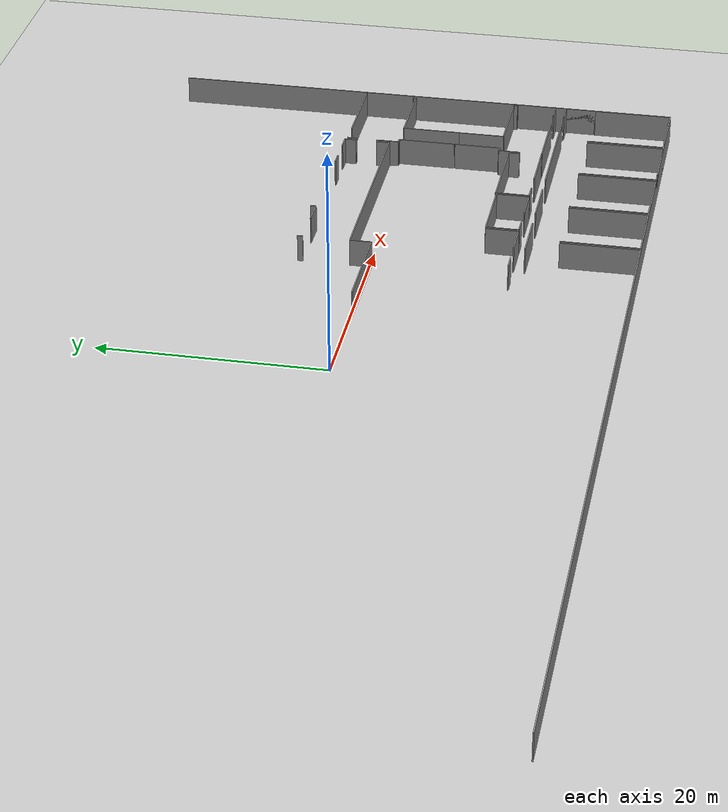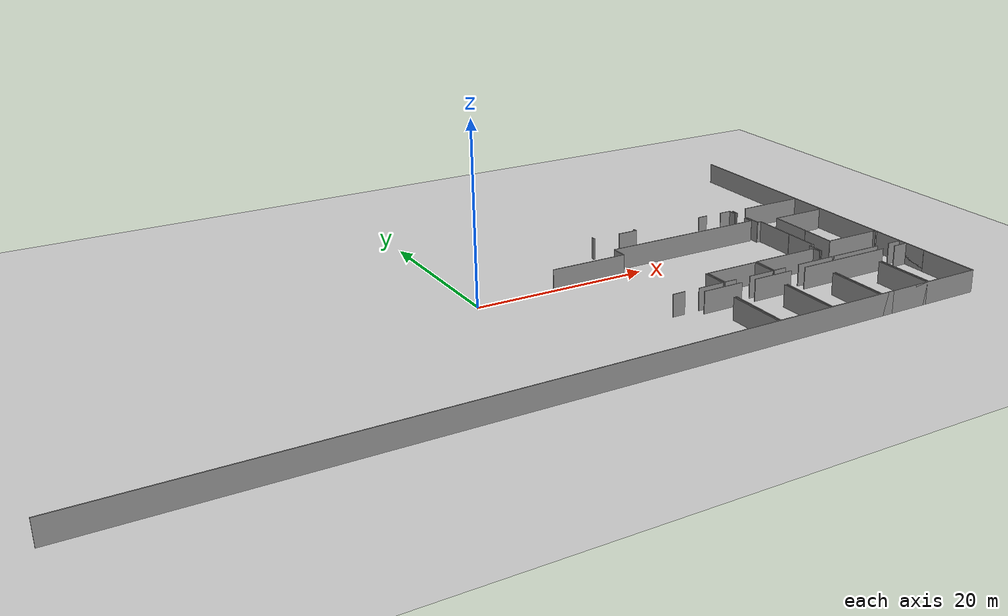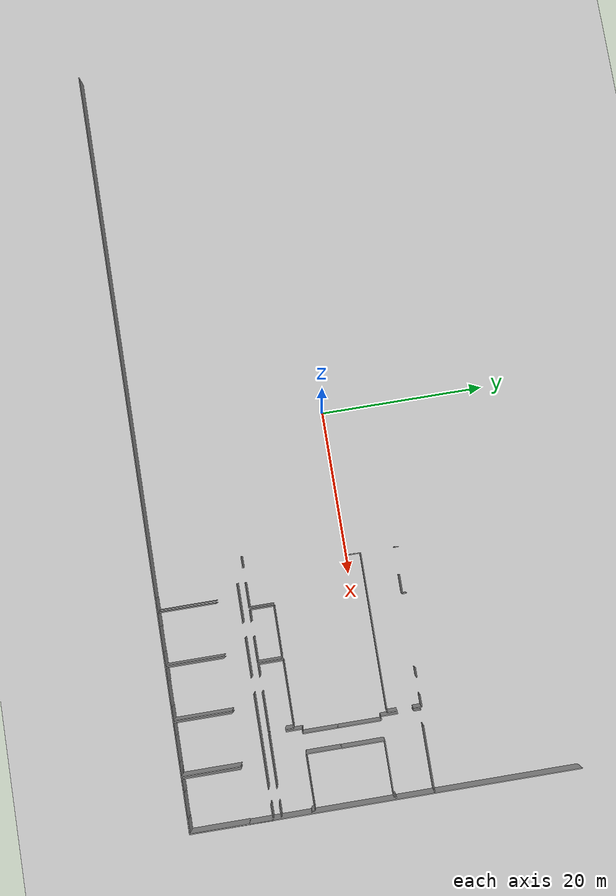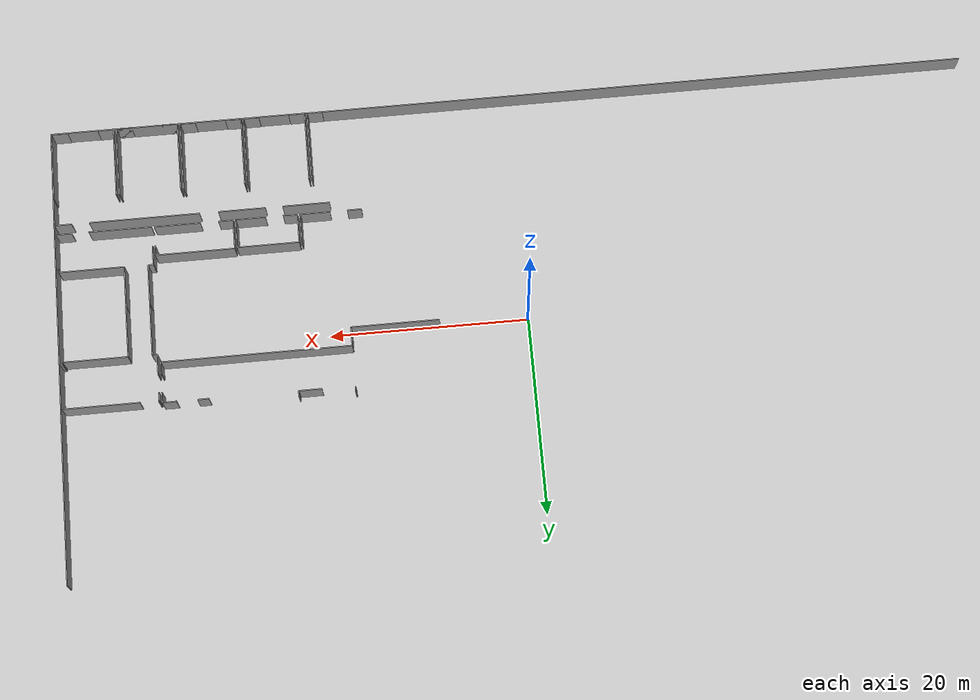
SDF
<sdf version="1.6">
 <world name="default">
  <model name="ground_plane">
   <static>1</static>
   <link name="link">
    <collision name="collision">
     <geometry><plane><normal>0 0 1</normal><size>100 100</size></plane></geometry>
     <surface><friction><ode><mu>100</mu><mu2>50</mu2></ode></friction></surface>
    </collision>
    <visual name="visual">
     <cast_shadows>0</cast_shadows>
     <geometry><plane><normal>0 0 1</normal><size>100 100</size></plane></geometry>
     <material>
      <script><uri>file://media/materials/scripts/gazebo.material</uri><name>Gazebo/Grey</name></script>
     </material>
    </visual>
   </link>
  </model>
  <model name="50045230">
   <static>1</static>
   <link name="Wall_241">
    <collision name="Wall_241_Collision">
     <geometry><box><size>4.75909962294 0.1 2.5</size></box></geometry>
     <pose>2.37954981147 0 1.25 0 0 0</pose>
    </collision>
    <visual name="Wall_241_Visual">
     <pose>2.37954981147 0 1.25 0 0 0</pose>
     <geometry><box><size>4.75909962294 0.1 2.5</size></box></geometry>
     <material>
      <script><uri>file://media/materials/scripts/gazebo.material</uri><name>Gazebo/Grey</name></script>
      <ambient>1 1 1 1</ambient>
     </material>
    </visual>
    <pose>65.7381898511 -36.8174489317 0 0 0 0.0</pose>
   </link>
   <link name="Wall_242">
    <collision name="Wall_242_Collision">
     <geometry><box><size>4.77281094875 0.1 2.5</size></box></geometry>
     <pose>2.38640547437 0 1.25 0 0 0</pose>
    </collision>
    <visual name="Wall_242_Visual">
     <pose>2.38640547437 0 1.25 0 0 0</pose>
     <geometry><box><size>4.77281094875 0.1 2.5</size></box></geometry>
     <material>
      <script><uri>file://media/materials/scripts/gazebo.material</uri><name>Gazebo/Grey</name></script>
      <ambient>1 1 1 1</ambient>
     </material>
    </visual>
    <pose>72.2357078472 -36.8174489317 0 0 0 0.0</pose>
   </link>
   <link name="Wall_243">
    <collision name="Wall_243_Collision">
     <geometry><box><size>11.1521322381 0.1 2.5</size></box></geometry>
     <pose>5.57606611906 0 1.25 0 0 0</pose>
    </collision>
    <visual name="Wall_243_Visual">
     <pose>5.57606611906 0 1.25 0 0 0</pose>
     <geometry><box><size>11.1521322381 0.1 2.5</size></box></geometry>
     <material>
      <script><uri>file://media/materials/scripts/gazebo.material</uri><name>Gazebo/Grey</name></script>
      <ambient>1 1 1 1</ambient>
     </material>
    </visual>
    <pose>78.8972539261 -36.8174489317 0 0 0 0.0</pose>
   </link>
   <link name="Wall_244">
    <collision name="Wall_244_Collision">
     <geometry><box><size>1.77599756243 0.1 2.5</size></box></geometry>
     <pose>0.887998781215 0 1.25 0 0 0</pose>
    </collision>
    <visual name="Wall_244_Visual">
     <pose>0.887998781215 0 1.25 0 0 0</pose>
     <geometry><box><size>1.77599756243 0.1 2.5</size></box></geometry>
     <material>
      <script><uri>file://media/materials/scripts/gazebo.material</uri><name>Gazebo/Grey</name></script>
      <ambient>1 1 1 1</ambient>
     </material>
    </visual>
    <pose>91.7968184646 -36.8174489317 0 0 0 0.0</pose>
   </link>
   <link name="Wall_245">
    <collision name="Wall_245_Collision">
     <geometry><box><size>2.72893470616 0.1 2.5</size></box></geometry>
     <pose>1.36446735308 0 1.25 0 0 0</pose>
    </collision>
    <visual name="Wall_245_Visual">
     <pose>1.36446735308 0 1.25 0 0 0</pose>
     <geometry><box><size>2.72893470616 0.1 2.5</size></box></geometry>
     <material>
      <script><uri>file://media/materials/scripts/gazebo.material</uri><name>Gazebo/Grey</name></script>
      <ambient>1 1 1 1</ambient>
     </material>
    </visual>
    <pose>93.572816027 -36.8174489317 0 0 0 -1.57079632679</pose>
   </link>
   <link name="Wall_267">
    <collision name="Wall_267_Collision">
     <geometry><box><size>1.54760242233 0.1 2.5</size></box></geometry>
     <pose>0.773801211167 0 1.25 0 0 0</pose>
    </collision>
    <visual name="Wall_267_Visual">
     <pose>0.773801211167 0 1.25 0 0 0</pose>
     <geometry><box><size>1.54760242233 0.1 2.5</size></box></geometry>
     <material>
      <script><uri>file://media/materials/scripts/gazebo.material</uri><name>Gazebo/Grey</name></script>
      <ambient>1 1 1 1</ambient>
     </material>
    </visual>
    <pose>67.3778358957 -46.6699252225 0 0 0 3.14159265359</pose>
   </link>
   <link name="Wall_270">
    <collision name="Wall_270_Collision">
     <geometry><box><size>7.05819304648 0.1 2.5</size></box></geometry>
     <pose>3.52909652324 0 1.25 0 0 0</pose>
    </collision>
    <visual name="Wall_270_Visual">
     <pose>3.52909652324 0 1.25 0 0 0</pose>
     <geometry><box><size>7.05819304648 0.1 2.5</size></box></geometry>
     <material>
      <script><uri>file://media/materials/scripts/gazebo.material</uri><name>Gazebo/Grey</name></script>
      <ambient>1 1 1 1</ambient>
     </material>
    </visual>
    <pose>67.3558723831 -39.6117663489 0 0 0 -1.56768454621</pose>
   </link>
   <link name="Wall_271">
    <collision name="Wall_271_Collision">
     <geometry><box><size>7.08748587606 0.1 2.5</size></box></geometry>
     <pose>3.54374293803 0 1.25 0 0 0</pose>
    </collision>
    <visual name="Wall_271_Visual">
     <pose>3.54374293803 0 1.25 0 0 0</pose>
     <geometry><box><size>7.08748587606 0.1 2.5</size></box></geometry>
     <material>
      <script><uri>file://media/materials/scripts/gazebo.material</uri><name>Gazebo/Grey</name></script>
      <ambient>1 1 1 1</ambient>
     </material>
    </visual>
    <pose>67.6380971727 -46.6831287214 0 0 0 1.57079632679</pose>
   </link>
   <link name="Wall_272">
    <collision name="Wall_272_Collision">
     <geometry><box><size>7.07364759354 0.1 2.5</size></box></geometry>
     <pose>3.53682379677 0 1.25 0 0 0</pose>
    </collision>
    <visual name="Wall_272_Visual">
     <pose>3.53682379677 0 1.25 0 0 0</pose>
     <geometry><box><size>7.07364759354 0.1 2.5</size></box></geometry>
     <material>
      <script><uri>file://media/materials/scripts/gazebo.material</uri><name>Gazebo/Grey</name></script>
      <ambient>1 1 1 1</ambient>
     </material>
    </visual>
    <pose>73.8956669671 -39.5956428454 0 0 0 -1.57079632679</pose>
   </link>
   <link name="Wall_273">
    <collision name="Wall_273_Collision">
     <geometry><box><size>1.56842332449 0.1 2.5</size></box></geometry>
     <pose>0.784211662244 0 1.25 0 0 0</pose>
    </collision>
    <visual name="Wall_273_Visual">
     <pose>0.784211662244 0 1.25 0 0 0</pose>
     <geometry><box><size>1.56842332449 0.1 2.5</size></box></geometry>
     <material>
      <script><uri>file://media/materials/scripts/gazebo.material</uri><name>Gazebo/Grey</name></script>
      <ambient>1 1 1 1</ambient>
     </material>
    </visual>
    <pose>73.8956669671 -46.6692904389 0 0 0 3.14159265359</pose>
   </link>
   <link name="Wall_274">
    <collision name="Wall_274_Collision">
     <geometry><box><size>1.63945053539 0.1 2.5</size></box></geometry>
     <pose>0.819725267693 0 1.25 0 0 0</pose>
    </collision>
    <visual name="Wall_274_Visual">
     <pose>0.819725267693 0 1.25 0 0 0</pose>
     <geometry><box><size>1.63945053539 0.1 2.5</size></box></geometry>
     <material>
      <script><uri>file://media/materials/scripts/gazebo.material</uri><name>Gazebo/Grey</name></script>
      <ambient>1 1 1 1</ambient>
     </material>
    </visual>
    <pose>69.2774893039 -46.6692904389 0 0 0 -3.1331517482</pose>
   </link>
   <link name="Wall_275">
    <collision name="Wall_275_Collision">
     <geometry><box><size>7.03822666853 0.1 2.5</size></box></geometry>
     <pose>3.51911333426 0 1.25 0 0 0</pose>
    </collision>
    <visual name="Wall_275_Visual">
     <pose>3.51911333426 0 1.25 0 0 0</pose>
     <geometry><box><size>7.03822666853 0.1 2.5</size></box></geometry>
     <material>
      <script><uri>file://media/materials/scripts/gazebo.material</uri><name>Gazebo/Grey</name></script>
      <ambient>1 1 1 1</ambient>
     </material>
    </visual>
    <pose>74.1626569502 -46.6499930174 0 0 0 1.57079632679</pose>
   </link>
   <link name="Wall_276">
    <collision name="Wall_276_Collision">
     <geometry><box><size>7.04927190321 0.1 2.5</size></box></geometry>
     <pose>3.5246359516 0 1.25 0 0 0</pose>
    </collision>
    <visual name="Wall_276_Visual">
     <pose>3.5246359516 0 1.25 0 0 0</pose>
     <geometry><box><size>7.04927190321 0.1 2.5</size></box></geometry>
     <material>
      <script><uri>file://media/materials/scripts/gazebo.material</uri><name>Gazebo/Grey</name></script>
      <ambient>1 1 1 1</ambient>
     </material>
    </visual>
    <pose>80.3882336511 -39.6117663489 0 0 0 -1.57079632679</pose>
   </link>
   <link name="Wall_277">
    <collision name="Wall_277_Collision">
     <geometry><box><size>1.55585460916 0.1 2.5</size></box></geometry>
     <pose>0.777927304582 0 1.25 0 0 0</pose>
    </collision>
    <visual name="Wall_277_Visual">
     <pose>0.777927304582 0 1.25 0 0 0</pose>
     <geometry><box><size>1.55585460916 0.1 2.5</size></box></geometry>
     <material>
      <script><uri>file://media/materials/scripts/gazebo.material</uri><name>Gazebo/Grey</name></script>
      <ambient>1 1 1 1</ambient>
     </material>
    </visual>
    <pose>80.3882336511 -46.6610382521 0 0 0 3.14159265359</pose>
   </link>
   <link name="Wall_278">
    <collision name="Wall_278_Collision">
     <geometry><box><size>1.60070843919 0.1 2.5</size></box></geometry>
     <pose>0.800354219596 0 1.25 0 0 0</pose>
    </collision>
    <visual name="Wall_278_Visual">
     <pose>0.800354219596 0 1.25 0 0 0</pose>
     <geometry><box><size>1.60070843919 0.1 2.5</size></box></geometry>
     <material>
      <script><uri>file://media/materials/scripts/gazebo.material</uri><name>Gazebo/Grey</name></script>
      <ambient>1 1 1 1</ambient>
     </material>
    </visual>
    <pose>75.7633272817 -46.6610382521 0 0 0 3.1346923824</pose>
   </link>
   <link name="Wall_279">
    <collision name="Wall_279_Collision">
     <geometry><box><size>1.57680246804 0.1 2.5</size></box></geometry>
     <pose>0.788401234019 0 1.25 0 0 0</pose>
    </collision>
    <visual name="Wall_279_Visual">
     <pose>0.788401234019 0 1.25 0 0 0</pose>
     <geometry><box><size>1.57680246804 0.1 2.5</size></box></geometry>
     <material>
      <script><uri>file://media/materials/scripts/gazebo.material</uri><name>Gazebo/Grey</name></script>
      <ambient>1 1 1 1</ambient>
     </material>
    </visual>
    <pose>86.912666472 -46.6991252682 0 0 0 3.14159265359</pose>
   </link>
   <link name="Wall_280">
    <collision name="Wall_280_Collision">
     <geometry><box><size>1.5647415796 0.1 2.5</size></box></geometry>
     <pose>0.782370789798 0 1.25 0 0 0</pose>
    </collision>
    <visual name="Wall_280_Visual">
     <pose>0.782370789798 0 1.25 0 0 0</pose>
     <geometry><box><size>1.5647415796 0.1 2.5</size></box></geometry>
     <material>
      <script><uri>file://media/materials/scripts/gazebo.material</uri><name>Gazebo/Grey</name></script>
      <ambient>1 1 1 1</ambient>
     </material>
    </visual>
    <pose>82.2259321797 -46.6991252682 0 0 0 3.14159265359</pose>
   </link>
   <link name="Wall_281">
    <collision name="Wall_281_Collision">
     <geometry><box><size>7.0759328145 0.1 2.5</size></box></geometry>
     <pose>3.53796640725 0 1.25 0 0 0</pose>
    </collision>
    <visual name="Wall_281_Visual">
     <pose>3.53796640725 0 1.25 0 0 0</pose>
     <geometry><box><size>7.0759328145 0.1 2.5</size></box></geometry>
     <material>
      <script><uri>file://media/materials/scripts/gazebo.material</uri><name>Gazebo/Grey</name></script>
      <ambient>1 1 1 1</ambient>
     </material>
    </visual>
    <pose>80.6611906001 -46.6991252682 0 0 0 1.57079632679</pose>
   </link>
   <link name="Wall_282">
    <collision name="Wall_282_Collision">
     <geometry><box><size>7.07594537121 0.1 2.5</size></box></geometry>
     <pose>3.53797268561 0 1.25 0 0 0</pose>
    </collision>
    <visual name="Wall_282_Visual">
     <pose>3.53797268561 0 1.25 0 0 0</pose>
     <geometry><box><size>7.07594537121 0.1 2.5</size></box></geometry>
     <material>
      <script><uri>file://media/materials/scripts/gazebo.material</uri><name>Gazebo/Grey</name></script>
      <ambient>1 1 1 1</ambient>
     </material>
    </visual>
    <pose>86.8993360164 -39.6231924537 0 0 0 -1.56891241407</pose>
   </link>
   <link name="Wall_283">
    <collision name="Wall_283_Collision">
     <geometry><box><size>7.07504411746 0.1 2.5</size></box></geometry>
     <pose>3.53752205873 0 1.25 0 0 0</pose>
    </collision>
    <visual name="Wall_283_Visual">
     <pose>3.53752205873 0 1.25 0 0 0</pose>
     <geometry><box><size>7.07504411746 0.1 2.5</size></box></geometry>
     <material>
      <script><uri>file://media/materials/scripts/gazebo.material</uri><name>Gazebo/Grey</name></script>
      <ambient>1 1 1 1</ambient>
     </material>
    </visual>
    <pose>87.1938756078 -46.694681783 0 0 0 1.57079632679</pose>
   </link>
   <link name="Wall_284">
    <collision name="Wall_284_Collision">
     <geometry><box><size>7.03657623116 0.1 2.5</size></box></geometry>
     <pose>3.51828811558 0 1.25 0 0 0</pose>
    </collision>
    <visual name="Wall_284_Visual">
     <pose>3.51828811558 0 1.25 0 0 0</pose>
     <geometry><box><size>7.03657623116 0.1 2.5</size></box></geometry>
     <material>
      <script><uri>file://media/materials/scripts/gazebo.material</uri><name>Gazebo/Grey</name></script>
      <ambient>1 1 1 1</ambient>
     </material>
    </visual>
    <pose>93.5222872523 -39.6196376655 0 0 0 -1.57079632679</pose>
   </link>
   <link name="Wall_285">
    <collision name="Wall_285_Collision">
     <geometry><box><size>1.65818172585 0.1 2.5</size></box></geometry>
     <pose>0.829090862925 0 1.25 0 0 0</pose>
    </collision>
    <visual name="Wall_285_Visual">
     <pose>0.829090862925 0 1.25 0 0 0</pose>
     <geometry><box><size>1.65818172585 0.1 2.5</size></box></geometry>
     <material>
      <script><uri>file://media/materials/scripts/gazebo.material</uri><name>Gazebo/Grey</name></script>
      <ambient>1 1 1 1</ambient>
     </material>
    </visual>
    <pose>93.5222872523 -46.6562138967 0 0 0 3.14159265359</pose>
   </link>
   <link name="Wall_286">
    <collision name="Wall_286_Collision">
     <geometry><box><size>1.60836695544 0.1 2.5</size></box></geometry>
     <pose>0.804183477719 0 1.25 0 0 0</pose>
    </collision>
    <visual name="Wall_286_Visual">
     <pose>0.804183477719 0 1.25 0 0 0</pose>
     <geometry><box><size>1.60836695544 0.1 2.5</size></box></geometry>
     <material>
      <script><uri>file://media/materials/scripts/gazebo.material</uri><name>Gazebo/Grey</name></script>
      <ambient>1 1 1 1</ambient>
     </material>
    </visual>
    <pose>88.8017824724 -46.6562138967 0 0 0 -3.11767301595</pose>
   </link>
   <link name="Wall_287">
    <collision name="Wall_287_Collision">
     <geometry><box><size>1.97620831059 0.1 2.5</size></box></geometry>
     <pose>0.988104155293 0 1.25 0 0 0</pose>
    </collision>
    <visual name="Wall_287_Visual">
     <pose>0.988104155293 0 1.25 0 0 0</pose>
     <geometry><box><size>1.97620831059 0.1 2.5</size></box></geometry>
     <material>
      <script><uri>file://media/materials/scripts/gazebo.material</uri><name>Gazebo/Grey</name></script>
      <ambient>1 1 1 1</ambient>
     </material>
    </visual>
    <pose>83.8028616045 -33.7777241738 0 0 0 1.57079632679</pose>
   </link>
   <link name="Wall_288">
    <collision name="Wall_288_Collision">
     <geometry><box><size>0.538296494725 0.1 2.5</size></box></geometry>
     <pose>0.269148247362 0 1.25 0 0 0</pose>
    </collision>
    <visual name="Wall_288_Visual">
     <pose>0.269148247362 0 1.25 0 0 0</pose>
     <geometry><box><size>0.538296494725 0.1 2.5</size></box></geometry>
     <material>
      <script><uri>file://media/materials/scripts/gazebo.material</uri><name>Gazebo/Grey</name></script>
      <ambient>1 1 1 1</ambient>
     </material>
    </visual>
    <pose>83.8028616045 -31.8015158632 0 0 0 0.0</pose>
   </link>
   <link name="Wall_289">
    <collision name="Wall_289_Collision">
     <geometry><box><size>4.16494217121 0.1 2.5</size></box></geometry>
     <pose>2.08247108561 0 1.25 0 0 0</pose>
    </collision>
    <visual name="Wall_289_Visual">
     <pose>2.08247108561 0 1.25 0 0 0</pose>
     <geometry><box><size>4.16494217121 0.1 2.5</size></box></geometry>
     <material>
      <script><uri>file://media/materials/scripts/gazebo.material</uri><name>Gazebo/Grey</name></script>
      <ambient>1 1 1 1</ambient>
     </material>
    </visual>
    <pose>84.3411580992 -31.8015158632 0 0 0 1.57079632679</pose>
   </link>
   <link name="Wall_290">
    <collision name="Wall_290_Collision">
     <geometry><box><size>4.17878045374 0.1 2.5</size></box></geometry>
     <pose>2.08939022687 0 1.25 0 0 0</pose>
    </collision>
    <visual name="Wall_290_Visual">
     <pose>2.08939022687 0 1.25 0 0 0</pose>
     <geometry><box><size>4.17878045374 0.1 2.5</size></box></geometry>
     <material>
      <script><uri>file://media/materials/scripts/gazebo.material</uri><name>Gazebo/Grey</name></script>
      <ambient>1 1 1 1</ambient>
     </material>
    </visual>
    <pose>86.7241357421 -27.636573692 0 0 0 -1.57079632679</pose>
   </link>
   <link name="Wall_291">
    <collision name="Wall_291_Collision">
     <geometry><box><size>6.55096677543 0.1 2.5</size></box></geometry>
     <pose>3.27548338771 0 1.25 0 0 0</pose>
    </collision>
    <visual name="Wall_291_Visual">
     <pose>3.27548338771 0 1.25 0 0 0</pose>
     <geometry><box><size>6.55096677543 0.1 2.5</size></box></geometry>
     <material>
      <script><uri>file://media/materials/scripts/gazebo.material</uri><name>Gazebo/Grey</name></script>
      <ambient>1 1 1 1</ambient>
     </material>
    </visual>
    <pose>86.7241357421 -31.8153541458 0 0 0 0.0</pose>
   </link>
   <link name="Wall_292">
    <collision name="Wall_292_Collision">
     <geometry><box><size>0.368174489317 0.1 2.5</size></box></geometry>
     <pose>0.184087244658 0 1.25 0 0 0</pose>
    </collision>
    <visual name="Wall_292_Visual">
     <pose>0.184087244658 0 1.25 0 0 0</pose>
     <geometry><box><size>0.368174489317 0.1 2.5</size></box></geometry>
     <material>
      <script><uri>file://media/materials/scripts/gazebo.material</uri><name>Gazebo/Grey</name></script>
      <ambient>1 1 1 1</ambient>
     </material>
    </visual>
    <pose>93.2751025176 -31.8153541458 0 0 0 -1.57079632679</pose>
   </link>
   <link name="Wall_293">
    <collision name="Wall_293_Collision">
     <geometry><box><size>0.152348064545 0.1 2.5</size></box></geometry>
     <pose>0.0761740322724 0 1.25 0 0 0</pose>
    </collision>
    <visual name="Wall_293_Visual">
     <pose>0.0761740322724 0 1.25 0 0 0</pose>
     <geometry><box><size>0.152348064545 0.1 2.5</size></box></geometry>
     <material>
      <script><uri>file://media/materials/scripts/gazebo.material</uri><name>Gazebo/Grey</name></script>
      <ambient>1 1 1 1</ambient>
     </material>
    </visual>
    <pose>93.2751025176 -32.1835286351 0 0 0 0.0</pose>
   </link>
   <link name="Wall_294">
    <collision name="Wall_294_Collision">
     <geometry><box><size>1.59965467772 0.1 2.5</size></box></geometry>
     <pose>0.79982733886 0 1.25 0 0 0</pose>
    </collision>
    <visual name="Wall_294_Visual">
     <pose>0.79982733886 0 1.25 0 0 0</pose>
     <geometry><box><size>1.59965467772 0.1 2.5</size></box></geometry>
     <material>
      <script><uri>file://media/materials/scripts/gazebo.material</uri><name>Gazebo/Grey</name></script>
      <ambient>1 1 1 1</ambient>
     </material>
    </visual>
    <pose>93.4274505821 -35.8271865121 0 0 0 3.14159265359</pose>
   </link>
   <link name="Wall_295">
    <collision name="Wall_295_Collision">
     <geometry><box><size>6.32234834628 0.1 2.5</size></box></geometry>
     <pose>3.16117417314 0 1.25 0 0 0</pose>
    </collision>
    <visual name="Wall_295_Visual">
     <pose>3.16117417314 0 1.25 0 0 0</pose>
     <geometry><box><size>6.32234834628 0.1 2.5</size></box></geometry>
     <material>
      <script><uri>file://media/materials/scripts/gazebo.material</uri><name>Gazebo/Grey</name></script>
      <ambient>1 1 1 1</ambient>
     </material>
    </visual>
    <pose>90.1251793264 -35.8271865121 0 0 0 3.13848015134</pose>
   </link>
   <link name="Wall_296">
    <collision name="Wall_296_Collision">
     <geometry><box><size>3.02385516777 0.1 2.5</size></box></geometry>
     <pose>1.51192758389 0 1.25 0 0 0</pose>
    </collision>
    <visual name="Wall_296_Visual">
     <pose>1.51192758389 0 1.25 0 0 0</pose>
     <geometry><box><size>3.02385516777 0.1 2.5</size></box></geometry>
     <material>
      <script><uri>file://media/materials/scripts/gazebo.material</uri><name>Gazebo/Grey</name></script>
      <ambient>1 1 1 1</ambient>
     </material>
    </visual>
    <pose>75.5636243605 -35.7988751635 0 0 0 1.57079632679</pose>
   </link>
   <link name="Wall_297">
    <collision name="Wall_297_Collision">
     <geometry><box><size>7.97745248645 0.1 2.5</size></box></geometry>
     <pose>3.98872624322 0 1.25 0 0 0</pose>
    </collision>
    <visual name="Wall_297_Visual">
     <pose>3.98872624322 0 1.25 0 0 0</pose>
     <geometry><box><size>7.97745248645 0.1 2.5</size></box></geometry>
     <material>
      <script><uri>file://media/materials/scripts/gazebo.material</uri><name>Gazebo/Grey</name></script>
      <ambient>1 1 1 1</ambient>
     </material>
    </visual>
    <pose>75.5636243605 -32.7750199957 0 0 0 0.0</pose>
   </link>
   <link name="Wall_298">
    <collision name="Wall_298_Collision">
     <geometry><box><size>1.00790940368 0.1 2.5</size></box></geometry>
     <pose>0.503954701842 0 1.25 0 0 0</pose>
    </collision>
    <visual name="Wall_298_Visual">
     <pose>0.503954701842 0 1.25 0 0 0</pose>
     <geometry><box><size>1.00790940368 0.1 2.5</size></box></geometry>
     <material>
      <script><uri>file://media/materials/scripts/gazebo.material</uri><name>Gazebo/Grey</name></script>
      <ambient>1 1 1 1</ambient>
     </material>
    </visual>
    <pose>83.5410768469 -32.7750199957 0 0 0 -1.57079632679</pose>
   </link>
   <link name="Wall_299">
    <collision name="Wall_299_Collision">
     <geometry><box><size>4.6645168662 0.1 2.5</size></box></geometry>
     <pose>2.3322584331 0 1.25 0 0 0</pose>
    </collision>
    <visual name="Wall_299_Visual">
     <pose>2.3322584331 0 1.25 0 0 0</pose>
     <geometry><box><size>4.6645168662 0.1 2.5</size></box></geometry>
     <material>
      <script><uri>file://media/materials/scripts/gazebo.material</uri><name>Gazebo/Grey</name></script>
      <ambient>1 1 1 1</ambient>
     </material>
    </visual>
    <pose>83.5410768469 -35.7979864664 0 0 0 3.14159265359</pose>
   </link>
   <link name="Wall_300">
    <collision name="Wall_300_Collision">
     <geometry><box><size>1.48640954874 0.1 2.5</size></box></geometry>
     <pose>0.743204774372 0 1.25 0 0 0</pose>
    </collision>
    <visual name="Wall_300_Visual">
     <pose>0.743204774372 0 1.25 0 0 0</pose>
     <geometry><box><size>1.48640954874 0.1 2.5</size></box></geometry>
     <material>
      <script><uri>file://media/materials/scripts/gazebo.material</uri><name>Gazebo/Grey</name></script>
      <ambient>1 1 1 1</ambient>
     </material>
    </visual>
    <pose>77.0500336435 -35.7979864664 0 0 0 -3.14099477187</pose>
   </link>
   <link name="Wall_301">
    <collision name="Wall_301_Collision">
     <geometry><box><size>2.93663590082 0.1 2.5</size></box></geometry>
     <pose>1.46831795041 0 1.25 0 0 0</pose>
    </collision>
    <visual name="Wall_301_Visual">
     <pose>1.46831795041 0 1.25 0 0 0</pose>
     <geometry><box><size>2.93663590082 0.1 2.5</size></box></geometry>
     <material>
      <script><uri>file://media/materials/scripts/gazebo.material</uri><name>Gazebo/Grey</name></script>
      <ambient>1 1 1 1</ambient>
     </material>
    </visual>
    <pose>69.0622976627 -35.7979864664 0 0 0 1.57079632679</pose>
   </link>
   <link name="Wall_302">
    <collision name="Wall_302_Collision">
     <geometry><box><size>6.25947414526 0.1 2.5</size></box></geometry>
     <pose>3.12973707263 0 1.25 0 0 0</pose>
    </collision>
    <visual name="Wall_302_Visual">
     <pose>3.12973707263 0 1.25 0 0 0</pose>
     <geometry><box><size>6.25947414526 0.1 2.5</size></box></geometry>
     <material>
      <script><uri>file://media/materials/scripts/gazebo.material</uri><name>Gazebo/Grey</name></script>
      <ambient>1 1 1 1</ambient>
     </material>
    </visual>
    <pose>69.0622976627 -32.8613505656 0 0 0 0.0</pose>
   </link>
   <link name="Wall_303">
    <collision name="Wall_303_Collision">
     <geometry><box><size>2.95859941346 0.1 2.5</size></box></geometry>
     <pose>1.47929970673 0 1.25 0 0 0</pose>
    </collision>
    <visual name="Wall_303_Visual">
     <pose>1.47929970673 0 1.25 0 0 0</pose>
     <geometry><box><size>2.95859941346 0.1 2.5</size></box></geometry>
     <material>
      <script><uri>file://media/materials/scripts/gazebo.material</uri><name>Gazebo/Grey</name></script>
      <ambient>1 1 1 1</ambient>
     </material>
    </visual>
    <pose>75.321771808 -32.8613505656 0 0 0 -1.57079632679</pose>
   </link>
   <link name="Wall_304">
    <collision name="Wall_304_Collision">
     <geometry><box><size>3.03591605622 0.1 2.5</size></box></geometry>
     <pose>1.51795802811 0 1.25 0 0 0</pose>
    </collision>
    <visual name="Wall_304_Visual">
     <pose>1.51795802811 0 1.25 0 0 0</pose>
     <geometry><box><size>3.03591605622 0.1 2.5</size></box></geometry>
     <material>
      <script><uri>file://media/materials/scripts/gazebo.material</uri><name>Gazebo/Grey</name></script>
      <ambient>1 1 1 1</ambient>
     </material>
    </visual>
    <pose>75.321771808 -35.8199499791 0 0 0 3.14159265359</pose>
   </link>
   <link name="Wall_305">
    <collision name="Wall_305_Collision">
     <geometry><box><size>1.44633077772 0.1 2.5</size></box></geometry>
     <pose>0.723165388858 0 1.25 0 0 0</pose>
    </collision>
    <visual name="Wall_305_Visual">
     <pose>0.723165388858 0 1.25 0 0 0</pose>
     <geometry><box><size>1.44633077772 0.1 2.5</size></box></geometry>
     <material>
      <script><uri>file://media/materials/scripts/gazebo.material</uri><name>Gazebo/Grey</name></script>
      <ambient>1 1 1 1</ambient>
     </material>
    </visual>
    <pose>70.5084616654 -35.8199499791 0 0 0 3.12640639246</pose>
   </link>
   <link name="Wall_308">
    <collision name="Wall_308_Collision">
     <geometry><box><size>2.9476811355 0.1 2.5</size></box></geometry>
     <pose>1.47384056775 0 1.25 0 0 0</pose>
    </collision>
    <visual name="Wall_308_Visual">
     <pose>1.47384056775 0 1.25 0 0 0</pose>
     <geometry><box><size>2.9476811355 0.1 2.5</size></box></geometry>
     <material>
      <script><uri>file://media/materials/scripts/gazebo.material</uri><name>Gazebo/Grey</name></script>
      <ambient>1 1 1 1</ambient>
     </material>
    </visual>
    <pose>68.7973389871 -32.8613505656 0 0 0 -1.57079632679</pose>
   </link>
   <link name="Wall_309">
    <collision name="Wall_309_Collision">
     <geometry><box><size>3.03413866213 0.1 2.5</size></box></geometry>
     <pose>1.51706933107 0 1.25 0 0 0</pose>
    </collision>
    <visual name="Wall_309_Visual">
     <pose>1.51706933107 0 1.25 0 0 0</pose>
     <geometry><box><size>3.03413866213 0.1 2.5</size></box></geometry>
     <material>
      <script><uri>file://media/materials/scripts/gazebo.material</uri><name>Gazebo/Grey</name></script>
      <ambient>1 1 1 1</ambient>
     </material>
    </visual>
    <pose>68.7973389871 -35.8090317011 0 0 0 3.14159265359</pose>
   </link>
   <link name="Wall_310">
    <collision name="Wall_310_Collision">
     <geometry><box><size>1.45180899024 0.1 2.5</size></box></geometry>
     <pose>0.725904495119 0 1.25 0 0 0</pose>
    </collision>
    <visual name="Wall_310_Visual">
     <pose>0.725904495119 0 1.25 0 0 0</pose>
     <geometry><box><size>1.45180899024 0.1 2.5</size></box></geometry>
     <material>
      <script><uri>file://media/materials/scripts/gazebo.material</uri><name>Gazebo/Grey</name></script>
      <ambient>1 1 1 1</ambient>
     </material>
    </visual>
    <pose>64.0115784529 -35.8090317011 0 0 0 -3.13258546386</pose>
   </link>
   <link name="Wall_340">
    <collision name="Wall_340_Collision">
     <geometry><box><size>5.17196287785 0.1 2.5</size></box></geometry>
     <pose>2.58598143893 0 1.25 0 0 0</pose>
    </collision>
    <visual name="Wall_340_Visual">
     <pose>2.58598143893 0 1.25 0 0 0</pose>
     <geometry><box><size>5.17196287785 0.1 2.5</size></box></geometry>
     <material>
      <script><uri>file://media/materials/scripts/gazebo.material</uri><name>Gazebo/Grey</name></script>
      <ambient>1 1 1 1</ambient>
     </material>
    </visual>
    <pose>84.3420467962 -27.5658587987 0 0 0 1.57079632679</pose>
   </link>
   <link name="Wall_341">
    <collision name="Wall_341_Collision">
     <geometry><box><size>0.481292927241 0.1 2.5</size></box></geometry>
     <pose>0.240646463621 0 1.25 0 0 0</pose>
    </collision>
    <visual name="Wall_341_Visual">
     <pose>0.240646463621 0 1.25 0 0 0</pose>
     <geometry><box><size>0.481292927241 0.1 2.5</size></box></geometry>
     <material>
      <script><uri>file://media/materials/scripts/gazebo.material</uri><name>Gazebo/Grey</name></script>
      <ambient>1 1 1 1</ambient>
     </material>
    </visual>
    <pose>84.3420467962 -22.3938959209 0 0 0 3.14159265359</pose>
   </link>
   <link name="Wall_342">
    <collision name="Wall_342_Collision">
     <geometry><box><size>2.0470501606 0.1 2.5</size></box></geometry>
     <pose>1.0235250803 0 1.25 0 0 0</pose>
    </collision>
    <visual name="Wall_342_Visual">
     <pose>1.0235250803 0 1.25 0 0 0</pose>
     <geometry><box><size>2.0470501606 0.1 2.5</size></box></geometry>
     <material>
      <script><uri>file://media/materials/scripts/gazebo.material</uri><name>Gazebo/Grey</name></script>
      <ambient>1 1 1 1</ambient>
     </material>
    </visual>
    <pose>83.860753869 -22.3938959209 0 0 0 1.57079632679</pose>
   </link>
   <link name="Wall_343">
    <collision name="Wall_343_Collision">
     <geometry><box><size>0.863940482689 0.1 2.5</size></box></geometry>
     <pose>0.431970241345 0 1.25 0 0 0</pose>
    </collision>
    <visual name="Wall_343_Visual">
     <pose>0.431970241345 0 1.25 0 0 0</pose>
     <geometry><box><size>0.863940482689 0.1 2.5</size></box></geometry>
     <material>
      <script><uri>file://media/materials/scripts/gazebo.material</uri><name>Gazebo/Grey</name></script>
      <ambient>1 1 1 1</ambient>
     </material>
    </visual>
    <pose>83.860753869 -18.471314129 0 0 0 1.57079632679</pose>
   </link>
   <link name="Wall_344">
    <collision name="Wall_344_Collision">
     <geometry><box><size>0.0835375220587 0.1 2.5</size></box></geometry>
     <pose>0.0417687610294 0 1.25 0 0 0</pose>
    </collision>
    <visual name="Wall_344_Visual">
     <pose>0.0417687610294 0 1.25 0 0 0</pose>
     <geometry><box><size>0.0835375220587 0.1 2.5</size></box></geometry>
     <material>
      <script><uri>file://media/materials/scripts/gazebo.material</uri><name>Gazebo/Grey</name></script>
      <ambient>1 1 1 1</ambient>
     </material>
    </visual>
    <pose>83.860753869 -17.6073736463 0 0 0 0.0</pose>
   </link>
   <link name="Wall_345">
    <collision name="Wall_345_Collision">
     <geometry><box><size>7.67935810682 0.1 2.5</size></box></geometry>
     <pose>3.83967905341 0 1.25 0 0 0</pose>
    </collision>
    <visual name="Wall_345_Visual">
     <pose>3.83967905341 0 1.25 0 0 0</pose>
     <geometry><box><size>7.67935810682 0.1 2.5</size></box></geometry>
     <material>
      <script><uri>file://media/materials/scripts/gazebo.material</uri><name>Gazebo/Grey</name></script>
      <ambient>1 1 1 1</ambient>
     </material>
    </visual>
    <pose>85.7586298831 -17.6073736463 0 0 0 0.0</pose>
   </link>
   <link name="Wall_346">
    <collision name="Wall_346_Collision">
     <geometry><box><size>0.210748155954 0.1 2.5</size></box></geometry>
     <pose>0.105374077977 0 1.25 0 0 0</pose>
    </collision>
    <visual name="Wall_346_Visual">
     <pose>0.105374077977 0 1.25 0 0 0</pose>
     <geometry><box><size>0.210748155954 0.1 2.5</size></box></geometry>
     <material>
      <script><uri>file://media/materials/scripts/gazebo.material</uri><name>Gazebo/Grey</name></script>
      <ambient>1 1 1 1</ambient>
     </material>
    </visual>
    <pose>93.4379879899 -22.1767999289 0 0 0 3.14159265359</pose>
   </link>
   <link name="Wall_347">
    <collision name="Wall_347_Collision">
     <geometry><box><size>0.230426447624 0.1 2.5</size></box></geometry>
     <pose>0.115213223812 0 1.25 0 0 0</pose>
    </collision>
    <visual name="Wall_347_Visual">
     <pose>0.115213223812 0 1.25 0 0 0</pose>
     <geometry><box><size>0.230426447624 0.1 2.5</size></box></geometry>
     <material>
      <script><uri>file://media/materials/scripts/gazebo.material</uri><name>Gazebo/Grey</name></script>
      <ambient>1 1 1 1</ambient>
     </material>
    </visual>
    <pose>93.2272398339 -22.1767999289 0 0 0 -1.57079632679</pose>
   </link>
   <link name="Wall_348">
    <collision name="Wall_348_Collision">
     <geometry><box><size>6.49485190499 0.1 2.5</size></box></geometry>
     <pose>3.24742595249 0 1.25 0 0 0</pose>
    </collision>
    <visual name="Wall_348_Visual">
     <pose>3.24742595249 0 1.25 0 0 0</pose>
     <geometry><box><size>6.49485190499 0.1 2.5</size></box></geometry>
     <material>
      <script><uri>file://media/materials/scripts/gazebo.material</uri><name>Gazebo/Grey</name></script>
      <ambient>1 1 1 1</ambient>
     </material>
    </visual>
    <pose>93.2272398339 -22.4072263765 0 0 0 3.14159265359</pose>
   </link>
   <link name="Wall_349">
    <collision name="Wall_349_Collision">
     <geometry><box><size>5.15863902265 0.1 2.5</size></box></geometry>
     <pose>2.57931951133 0 1.25 0 0 0</pose>
    </collision>
    <visual name="Wall_349_Visual">
     <pose>2.57931951133 0 1.25 0 0 0</pose>
     <geometry><box><size>5.15863902265 0.1 2.5</size></box></geometry>
     <material>
      <script><uri>file://media/materials/scripts/gazebo.material</uri><name>Gazebo/Grey</name></script>
      <ambient>1 1 1 1</ambient>
     </material>
    </visual>
    <pose>86.732387929 -22.4072263765 0 0 0 -1.56919664317</pose>
   </link>
   <link name="Wall_377">
    <collision name="Wall_377_Collision">
     <geometry><box><size>0.492465118641 0.1 2.5</size></box></geometry>
     <pose>0.246232559321 0 1.25 0 0 0</pose>
    </collision>
    <visual name="Wall_377_Visual">
     <pose>0.246232559321 0 1.25 0 0 0</pose>
     <geometry><box><size>0.492465118641 0.1 2.5</size></box></geometry>
     <material>
      <script><uri>file://media/materials/scripts/gazebo.material</uri><name>Gazebo/Grey</name></script>
      <ambient>1 1 1 1</ambient>
     </material>
    </visual>
    <pose>64.4942679041 -17.3990376681 0 0 0 1.57079632679</pose>
   </link>
   <link name="Wall_380">
    <collision name="Wall_380_Collision">
     <geometry><box><size>2.31226274963 0.1 2.5</size></box></geometry>
     <pose>1.15613137481 0 1.25 0 0 0</pose>
    </collision>
    <visual name="Wall_380_Visual">
     <pose>1.15613137481 0 1.25 0 0 0</pose>
     <geometry><box><size>2.31226274963 0.1 2.5</size></box></geometry>
     <material>
      <script><uri>file://media/materials/scripts/gazebo.material</uri><name>Gazebo/Grey</name></script>
      <ambient>1 1 1 1</ambient>
     </material>
    </visual>
    <pose>67.7999669913 -17.4074168116 0 0 0 0.0</pose>
   </link>
   <link name="Wall_381">
    <collision name="Wall_381_Collision">
     <geometry><box><size>0.500844262191 0.1 2.5</size></box></geometry>
     <pose>0.250422131096 0 1.25 0 0 0</pose>
    </collision>
    <visual name="Wall_381_Visual">
     <pose>0.250422131096 0 1.25 0 0 0</pose>
     <geometry><box><size>0.500844262191 0.1 2.5</size></box></geometry>
     <material>
      <script><uri>file://media/materials/scripts/gazebo.material</uri><name>Gazebo/Grey</name></script>
      <ambient>1 1 1 1</ambient>
     </material>
    </visual>
    <pose>70.1122297409 -17.4074168116 0 0 0 1.57079632679</pose>
   </link>
   <link name="Wall_388">
    <collision name="Wall_388_Collision">
     <geometry><box><size>1.1352469943 0.1 2.5</size></box></geometry>
     <pose>0.56762349715 0 1.25 0 0 0</pose>
    </collision>
    <visual name="Wall_388_Visual">
     <pose>0.56762349715 0 1.25 0 0 0</pose>
     <geometry><box><size>1.1352469943 0.1 2.5</size></box></geometry>
     <material>
      <script><uri>file://media/materials/scripts/gazebo.material</uri><name>Gazebo/Grey</name></script>
      <ambient>1 1 1 1</ambient>
     </material>
    </visual>
    <pose>78.9691114299 -17.4074168116 0 0 0 0.0</pose>
   </link>
   <link name="Wall_389">
    <collision name="Wall_389_Collision">
     <geometry><box><size>1.40160219381 0.1 2.5</size></box></geometry>
     <pose>0.700801096906 0 1.25 0 0 0</pose>
    </collision>
    <visual name="Wall_389_Visual">
     <pose>0.700801096906 0 1.25 0 0 0</pose>
     <geometry><box><size>1.40160219381 0.1 2.5</size></box></geometry>
     <material>
      <script><uri>file://media/materials/scripts/gazebo.material</uri><name>Gazebo/Grey</name></script>
      <ambient>1 1 1 1</ambient>
     </material>
    </visual>
    <pose>82.1530590222 -17.4074168116 0 0 0 0.0</pose>
   </link>
   <link name="Wall_390">
    <collision name="Wall_390_Collision">
     <geometry><box><size>1.03761727627 0.1 2.5</size></box></geometry>
     <pose>0.518808638135 0 1.25 0 0 0</pose>
    </collision>
    <visual name="Wall_390_Visual">
     <pose>0.518808638135 0 1.25 0 0 0</pose>
     <geometry><box><size>1.03761727627 0.1 2.5</size></box></geometry>
     <material>
      <script><uri>file://media/materials/scripts/gazebo.material</uri><name>Gazebo/Grey</name></script>
      <ambient>1 1 1 1</ambient>
     </material>
    </visual>
    <pose>83.554661216 -17.4074168116 0 0 0 -1.57079632679</pose>
   </link>
   <link name="Wall_391">
    <collision name="Wall_391_Collision">
     <geometry><box><size>1.20964363249 0.1 2.5</size></box></geometry>
     <pose>0.604821816243 0 1.25 0 0 0</pose>
    </collision>
    <visual name="Wall_391_Visual">
     <pose>0.604821816243 0 1.25 0 0 0</pose>
     <geometry><box><size>1.20964363249 0.1 2.5</size></box></geometry>
     <material>
      <script><uri>file://media/materials/scripts/gazebo.material</uri><name>Gazebo/Grey</name></script>
      <ambient>1 1 1 1</ambient>
     </material>
    </visual>
    <pose>83.554661216 -20.3624614369 0 0 0 -1.57079632679</pose>
   </link>
   <link name="Wall_392">
    <collision name="Wall_392_Collision">
     <geometry><box><size>19.0384297993 0.1 2.5</size></box></geometry>
     <pose>9.51921489964 0 1.25 0 0 0</pose>
    </collision>
    <visual name="Wall_392_Visual">
     <pose>9.51921489964 0 1.25 0 0 0</pose>
     <geometry><box><size>19.0384297993 0.1 2.5</size></box></geometry>
     <material>
      <script><uri>file://media/materials/scripts/gazebo.material</uri><name>Gazebo/Grey</name></script>
      <ambient>1 1 1 1</ambient>
     </material>
    </visual>
    <pose>83.554661216 -21.5721050694 0 0 0 3.14159265359</pose>
   </link>
   <link name="Wall_393">
    <collision name="Wall_393_Collision">
     <geometry><box><size>1.9129838638 0.1 2.5</size></box></geometry>
     <pose>0.9564919319 0 1.25 0 0 0</pose>
    </collision>
    <visual name="Wall_393_Visual">
     <pose>0.9564919319 0 1.25 0 0 0</pose>
     <geometry><box><size>1.9129838638 0.1 2.5</size></box></geometry>
     <material>
      <script><uri>file://media/materials/scripts/gazebo.material</uri><name>Gazebo/Grey</name></script>
      <ambient>1 1 1 1</ambient>
     </material>
    </visual>
    <pose>64.5162314167 -21.5721050694 0 0 0 -1.57079632679</pose>
   </link>
   <link name="Wall_394">
    <collision name="Wall_394_Collision">
     <geometry><box><size>8.86221387129 0.1 2.5</size></box></geometry>
     <pose>4.43110693565 0 1.25 0 0 0</pose>
    </collision>
    <visual name="Wall_394_Visual">
     <pose>4.43110693565 0 1.25 0 0 0</pose>
     <geometry><box><size>8.86221387129 0.1 2.5</size></box></geometry>
     <material>
      <script><uri>file://media/materials/scripts/gazebo.material</uri><name>Gazebo/Grey</name></script>
      <ambient>1 1 1 1</ambient>
     </material>
    </visual>
    <pose>64.5162314167 -23.4850889332 0 0 0 3.14159265359</pose>
   </link>
   <link name="Wall_403">
    <collision name="Wall_403_Collision">
     <geometry><box><size>46.6991252682 0.1 2.5</size></box></geometry>
     <pose>23.3495626341 0 1.25 0 0 0</pose>
    </collision>
    <visual name="Wall_403_Visual">
     <pose>23.3495626341 0 1.25 0 0 0</pose>
     <geometry><box><size>46.6991252682 0.1 2.5</size></box></geometry>
     <material>
      <script><uri>file://media/materials/scripts/gazebo.material</uri><name>Gazebo/Grey</name></script>
      <ambient>1 1 1 1</ambient>
     </material>
    </visual>
    <pose>93.572816027 -46.6991252682 0 0 0 1.57079632679</pose>
   </link>
   <link name="Wall_404">
    <collision name="Wall_404_Collision">
     <geometry><box><size>93.572816027 0.1 2.5</size></box></geometry>
     <pose>46.7864080135 0 1.25 0 0 0</pose>
    </collision>
    <visual name="Wall_404_Visual">
     <pose>46.7864080135 0 1.25 0 0 0</pose>
     <geometry><box><size>93.572816027 0.1 2.5</size></box></geometry>
     <material>
      <script><uri>file://media/materials/scripts/gazebo.material</uri><name>Gazebo/Grey</name></script>
      <ambient>1 1 1 1</ambient>
     </material>
    </visual>
    <pose>93.572816027 -46.6991252682 0 0 0 3.14159265359</pose>
   </link>
   <pose>-46.75 23.3491252682 0 0 0 0</pose>
  </model>
 </world>
</sdf>
